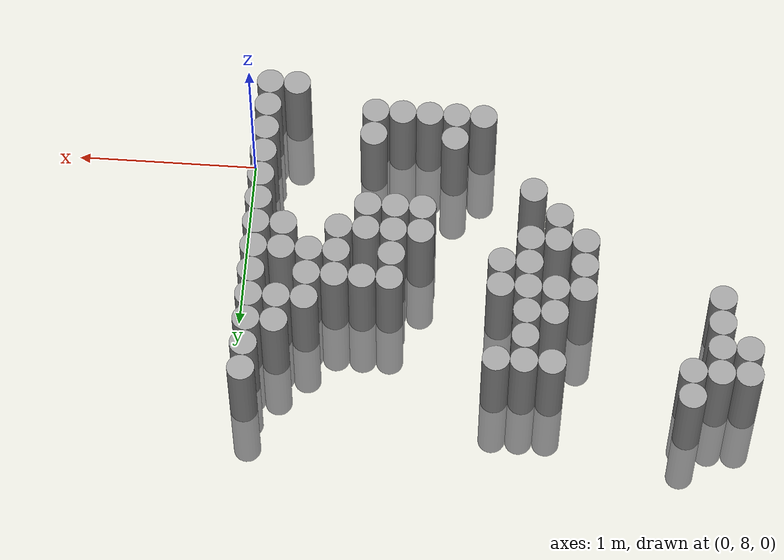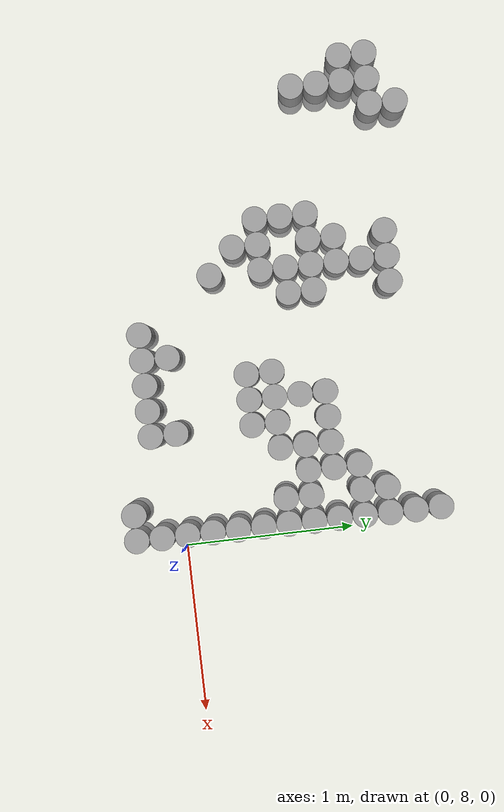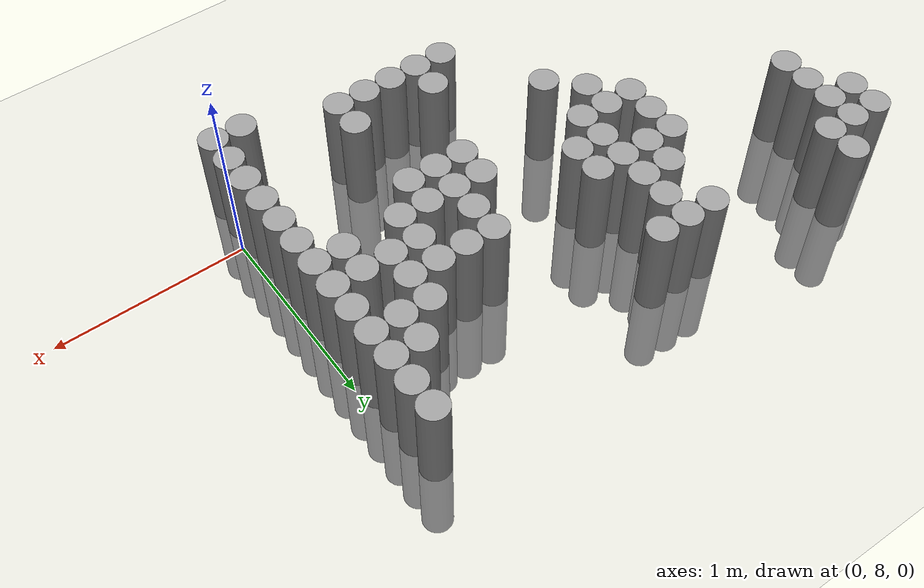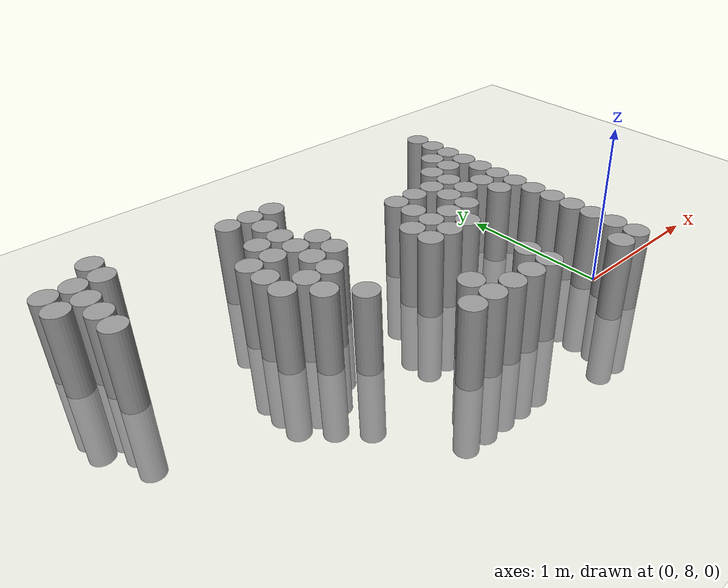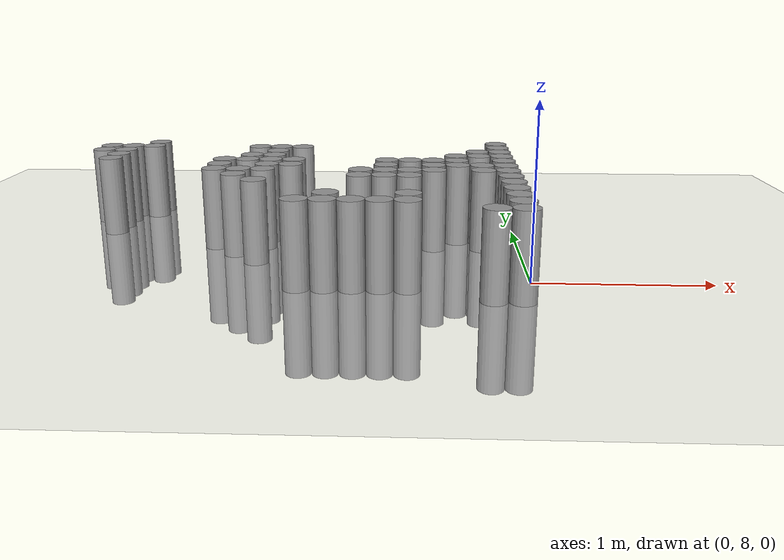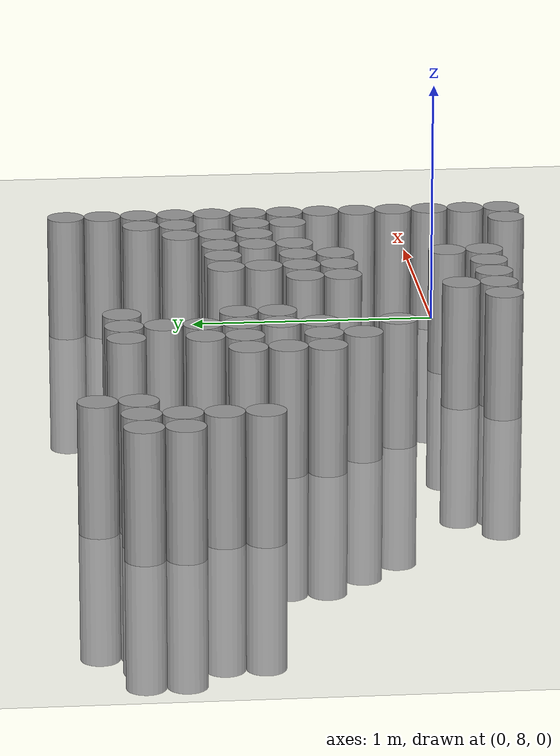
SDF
<sdf version="1.6">
 <world name="default">
  <model name="ground_plane">
   <static>1</static>
   <link name="link">
    <collision name="collision">
     <geometry><plane><normal>0 0 1</normal><size>100 100</size></plane></geometry>
     <surface><friction><ode><mu>100</mu><mu2>50</mu2></ode></friction></surface>
    </collision>
    <visual name="visual">
     <cast_shadows>0</cast_shadows>
     <geometry><plane><normal>0 0 1</normal><size>100 100</size></plane></geometry>
     <material>
      <script><uri>file://media/materials/scripts/gazebo.material</uri><name>Gazebo/Grey</name></script>
     </material>
    </visual>
   </link>
  </model>
  <model name="unit_cylinder_172">
   <pose>-2.775000 9.225000 0.000000 0.000000 0.000000 0.000000</pose>
   <link name="link">
    <inertial>
     <mass>1</mass>
     <inertia><ixx>0.145833</ixx><ixy>0</ixy><ixz>0</ixz><iyy>0.145833</iyy><iyz>0</iyz><izz>0.125</izz></inertia>
    </inertial>
    <collision name="collision">
     <geometry><cylinder><radius>0.075000</radius><length>1</length></cylinder></geometry>
    </collision>
    <visual name="visual">
     <geometry><cylinder><radius>0.075000</radius><length>1</length></cylinder></geometry>
     <material>
      <script><name>Gazebo/Grey</name><uri>file://media/materials/scripts/gazebo.material</uri></script>
     </material>
    </visual>
   </link>
  </model>
  <model name="unit_cylinder_173">
   <pose>-2.775000 9.375000 0.000000 0.000000 0.000000 0.000000</pose>
   <link name="link">
    <inertial>
     <mass>1</mass>
     <inertia><ixx>0.145833</ixx><ixy>0</ixy><ixz>0</ixz><iyy>0.145833</iyy><iyz>0</iyz><izz>0.125</izz></inertia>
    </inertial>
    <collision name="collision">
     <geometry><cylinder><radius>0.075000</radius><length>1</length></cylinder></geometry>
    </collision>
    <visual name="visual">
     <geometry><cylinder><radius>0.075000</radius><length>1</length></cylinder></geometry>
     <material>
      <script><name>Gazebo/Grey</name><uri>file://media/materials/scripts/gazebo.material</uri></script>
     </material>
    </visual>
   </link>
  </model>
  <model name="unit_cylinder_175">
   <pose>-2.625000 8.925000 0.000000 0.000000 0.000000 0.000000</pose>
   <link name="link">
    <inertial>
     <mass>1</mass>
     <inertia><ixx>0.145833</ixx><ixy>0</ixy><ixz>0</ixz><iyy>0.145833</iyy><iyz>0</iyz><izz>0.125</izz></inertia>
    </inertial>
    <collision name="collision">
     <geometry><cylinder><radius>0.075000</radius><length>1</length></cylinder></geometry>
    </collision>
    <visual name="visual">
     <geometry><cylinder><radius>0.075000</radius><length>1</length></cylinder></geometry>
     <material>
      <script><name>Gazebo/Grey</name><uri>file://media/materials/scripts/gazebo.material</uri></script>
     </material>
    </visual>
   </link>
  </model>
  <model name="unit_cylinder_176">
   <pose>-2.625000 9.075000 0.000000 0.000000 0.000000 0.000000</pose>
   <link name="link">
    <inertial>
     <mass>1</mass>
     <inertia><ixx>0.145833</ixx><ixy>0</ixy><ixz>0</ixz><iyy>0.145833</iyy><iyz>0</iyz><izz>0.125</izz></inertia>
    </inertial>
    <collision name="collision">
     <geometry><cylinder><radius>0.075000</radius><length>1</length></cylinder></geometry>
    </collision>
    <visual name="visual">
     <geometry><cylinder><radius>0.075000</radius><length>1</length></cylinder></geometry>
     <material>
      <script><name>Gazebo/Grey</name><uri>file://media/materials/scripts/gazebo.material</uri></script>
     </material>
    </visual>
   </link>
  </model>
  <model name="unit_cylinder_177">
   <pose>-2.625000 9.225000 0.000000 0.000000 0.000000 0.000000</pose>
   <link name="link">
    <inertial>
     <mass>1</mass>
     <inertia><ixx>0.145833</ixx><ixy>0</ixy><ixz>0</ixz><iyy>0.145833</iyy><iyz>0</iyz><izz>0.125</izz></inertia>
    </inertial>
    <collision name="collision">
     <geometry><cylinder><radius>0.075000</radius><length>1</length></cylinder></geometry>
    </collision>
    <visual name="visual">
     <geometry><cylinder><radius>0.075000</radius><length>1</length></cylinder></geometry>
     <material>
      <script><name>Gazebo/Grey</name><uri>file://media/materials/scripts/gazebo.material</uri></script>
     </material>
    </visual>
   </link>
  </model>
  <model name="unit_cylinder_178">
   <pose>-2.625000 9.375000 0.000000 0.000000 0.000000 0.000000</pose>
   <link name="link">
    <inertial>
     <mass>1</mass>
     <inertia><ixx>0.145833</ixx><ixy>0</ixy><ixz>0</ixz><iyy>0.145833</iyy><iyz>0</iyz><izz>0.125</izz></inertia>
    </inertial>
    <collision name="collision">
     <geometry><cylinder><radius>0.075000</radius><length>1</length></cylinder></geometry>
    </collision>
    <visual name="visual">
     <geometry><cylinder><radius>0.075000</radius><length>1</length></cylinder></geometry>
     <material>
      <script><name>Gazebo/Grey</name><uri>file://media/materials/scripts/gazebo.material</uri></script>
     </material>
    </visual>
   </link>
  </model>
  <model name="unit_cylinder_181">
   <pose>-2.475000 9.375000 0.000000 0.000000 0.000000 0.000000</pose>
   <link name="link">
    <inertial>
     <mass>1</mass>
     <inertia><ixx>0.145833</ixx><ixy>0</ixy><ixz>0</ixz><iyy>0.145833</iyy><iyz>0</iyz><izz>0.125</izz></inertia>
    </inertial>
    <collision name="collision">
     <geometry><cylinder><radius>0.075000</radius><length>1</length></cylinder></geometry>
    </collision>
    <visual name="visual">
     <geometry><cylinder><radius>0.075000</radius><length>1</length></cylinder></geometry>
     <material>
      <script><name>Gazebo/Grey</name><uri>file://media/materials/scripts/gazebo.material</uri></script>
     </material>
    </visual>
   </link>
  </model>
  <model name="unit_cylinder_182">
   <pose>-2.475000 9.525000 0.000000 0.000000 0.000000 0.000000</pose>
   <link name="link">
    <inertial>
     <mass>1</mass>
     <inertia><ixx>0.145833</ixx><ixy>0</ixy><ixz>0</ixz><iyy>0.145833</iyy><iyz>0</iyz><izz>0.125</izz></inertia>
    </inertial>
    <collision name="collision">
     <geometry><cylinder><radius>0.075000</radius><length>1</length></cylinder></geometry>
    </collision>
    <visual name="visual">
     <geometry><cylinder><radius>0.075000</radius><length>1</length></cylinder></geometry>
     <material>
      <script><name>Gazebo/Grey</name><uri>file://media/materials/scripts/gazebo.material</uri></script>
     </material>
    </visual>
   </link>
  </model>
  <model name="unit_cylinder_190">
   <pose>-1.875000 8.625000 0.000000 0.000000 0.000000 0.000000</pose>
   <link name="link">
    <inertial>
     <mass>1</mass>
     <inertia><ixx>0.145833</ixx><ixy>0</ixy><ixz>0</ixz><iyy>0.145833</iyy><iyz>0</iyz><izz>0.125</izz></inertia>
    </inertial>
    <collision name="collision">
     <geometry><cylinder><radius>0.075000</radius><length>1</length></cylinder></geometry>
    </collision>
    <visual name="visual">
     <geometry><cylinder><radius>0.075000</radius><length>1</length></cylinder></geometry>
     <material>
      <script><name>Gazebo/Grey</name><uri>file://media/materials/scripts/gazebo.material</uri></script>
     </material>
    </visual>
   </link>
  </model>
  <model name="unit_cylinder_191">
   <pose>-1.875000 8.775000 0.000000 0.000000 0.000000 0.000000</pose>
   <link name="link">
    <inertial>
     <mass>1</mass>
     <inertia><ixx>0.145833</ixx><ixy>0</ixy><ixz>0</ixz><iyy>0.145833</iyy><iyz>0</iyz><izz>0.125</izz></inertia>
    </inertial>
    <collision name="collision">
     <geometry><cylinder><radius>0.075000</radius><length>1</length></cylinder></geometry>
    </collision>
    <visual name="visual">
     <geometry><cylinder><radius>0.075000</radius><length>1</length></cylinder></geometry>
     <material>
      <script><name>Gazebo/Grey</name><uri>file://media/materials/scripts/gazebo.material</uri></script>
     </material>
    </visual>
   </link>
  </model>
  <model name="unit_cylinder_192">
   <pose>-1.875000 8.925000 0.000000 0.000000 0.000000 0.000000</pose>
   <link name="link">
    <inertial>
     <mass>1</mass>
     <inertia><ixx>0.145833</ixx><ixy>0</ixy><ixz>0</ixz><iyy>0.145833</iyy><iyz>0</iyz><izz>0.125</izz></inertia>
    </inertial>
    <collision name="collision">
     <geometry><cylinder><radius>0.075000</radius><length>1</length></cylinder></geometry>
    </collision>
    <visual name="visual">
     <geometry><cylinder><radius>0.075000</radius><length>1</length></cylinder></geometry>
     <material>
      <script><name>Gazebo/Grey</name><uri>file://media/materials/scripts/gazebo.material</uri></script>
     </material>
    </visual>
   </link>
  </model>
  <model name="unit_cylinder_197">
   <pose>-1.725000 8.475000 0.000000 0.000000 0.000000 0.000000</pose>
   <link name="link">
    <inertial>
     <mass>1</mass>
     <inertia><ixx>0.145833</ixx><ixy>0</ixy><ixz>0</ixz><iyy>0.145833</iyy><iyz>0</iyz><izz>0.125</izz></inertia>
    </inertial>
    <collision name="collision">
     <geometry><cylinder><radius>0.075000</radius><length>1</length></cylinder></geometry>
    </collision>
    <visual name="visual">
     <geometry><cylinder><radius>0.075000</radius><length>1</length></cylinder></geometry>
     <material>
      <script><name>Gazebo/Grey</name><uri>file://media/materials/scripts/gazebo.material</uri></script>
     </material>
    </visual>
   </link>
  </model>
  <model name="unit_cylinder_198">
   <pose>-1.725000 8.625000 0.000000 0.000000 0.000000 0.000000</pose>
   <link name="link">
    <inertial>
     <mass>1</mass>
     <inertia><ixx>0.145833</ixx><ixy>0</ixy><ixz>0</ixz><iyy>0.145833</iyy><iyz>0</iyz><izz>0.125</izz></inertia>
    </inertial>
    <collision name="collision">
     <geometry><cylinder><radius>0.075000</radius><length>1</length></cylinder></geometry>
    </collision>
    <visual name="visual">
     <geometry><cylinder><radius>0.075000</radius><length>1</length></cylinder></geometry>
     <material>
      <script><name>Gazebo/Grey</name><uri>file://media/materials/scripts/gazebo.material</uri></script>
     </material>
    </visual>
   </link>
  </model>
  <model name="unit_cylinder_199">
   <pose>-1.725000 8.925000 0.000000 0.000000 0.000000 0.000000</pose>
   <link name="link">
    <inertial>
     <mass>1</mass>
     <inertia><ixx>0.145833</ixx><ixy>0</ixy><ixz>0</ixz><iyy>0.145833</iyy><iyz>0</iyz><izz>0.125</izz></inertia>
    </inertial>
    <collision name="collision">
     <geometry><cylinder><radius>0.075000</radius><length>1</length></cylinder></geometry>
    </collision>
    <visual name="visual">
     <geometry><cylinder><radius>0.075000</radius><length>1</length></cylinder></geometry>
     <material>
      <script><name>Gazebo/Grey</name><uri>file://media/materials/scripts/gazebo.material</uri></script>
     </material>
    </visual>
   </link>
  </model>
  <model name="unit_cylinder_200">
   <pose>-1.725000 9.075000 0.000000 0.000000 0.000000 0.000000</pose>
   <link name="link">
    <inertial>
     <mass>1</mass>
     <inertia><ixx>0.145833</ixx><ixy>0</ixy><ixz>0</ixz><iyy>0.145833</iyy><iyz>0</iyz><izz>0.125</izz></inertia>
    </inertial>
    <collision name="collision">
     <geometry><cylinder><radius>0.075000</radius><length>1</length></cylinder></geometry>
    </collision>
    <visual name="visual">
     <geometry><cylinder><radius>0.075000</radius><length>1</length></cylinder></geometry>
     <material>
      <script><name>Gazebo/Grey</name><uri>file://media/materials/scripts/gazebo.material</uri></script>
     </material>
    </visual>
   </link>
  </model>
  <model name="unit_cylinder_201">
   <pose>-1.725000 9.375000 0.000000 0.000000 0.000000 0.000000</pose>
   <link name="link">
    <inertial>
     <mass>1</mass>
     <inertia><ixx>0.145833</ixx><ixy>0</ixy><ixz>0</ixz><iyy>0.145833</iyy><iyz>0</iyz><izz>0.125</izz></inertia>
    </inertial>
    <collision name="collision">
     <geometry><cylinder><radius>0.075000</radius><length>1</length></cylinder></geometry>
    </collision>
    <visual name="visual">
     <geometry><cylinder><radius>0.075000</radius><length>1</length></cylinder></geometry>
     <material>
      <script><name>Gazebo/Grey</name><uri>file://media/materials/scripts/gazebo.material</uri></script>
     </material>
    </visual>
   </link>
  </model>
  <model name="unit_cylinder_206">
   <pose>-1.575000 8.325000 0.000000 0.000000 0.000000 0.000000</pose>
   <link name="link">
    <inertial>
     <mass>1</mass>
     <inertia><ixx>0.145833</ixx><ixy>0</ixy><ixz>0</ixz><iyy>0.145833</iyy><iyz>0</iyz><izz>0.125</izz></inertia>
    </inertial>
    <collision name="collision">
     <geometry><cylinder><radius>0.075000</radius><length>1</length></cylinder></geometry>
    </collision>
    <visual name="visual">
     <geometry><cylinder><radius>0.075000</radius><length>1</length></cylinder></geometry>
     <material>
      <script><name>Gazebo/Grey</name><uri>file://media/materials/scripts/gazebo.material</uri></script>
     </material>
    </visual>
   </link>
  </model>
  <model name="unit_cylinder_207">
   <pose>-1.575000 8.625000 0.000000 0.000000 0.000000 0.000000</pose>
   <link name="link">
    <inertial>
     <mass>1</mass>
     <inertia><ixx>0.145833</ixx><ixy>0</ixy><ixz>0</ixz><iyy>0.145833</iyy><iyz>0</iyz><izz>0.125</izz></inertia>
    </inertial>
    <collision name="collision">
     <geometry><cylinder><radius>0.075000</radius><length>1</length></cylinder></geometry>
    </collision>
    <visual name="visual">
     <geometry><cylinder><radius>0.075000</radius><length>1</length></cylinder></geometry>
     <material>
      <script><name>Gazebo/Grey</name><uri>file://media/materials/scripts/gazebo.material</uri></script>
     </material>
    </visual>
   </link>
  </model>
  <model name="unit_cylinder_208">
   <pose>-1.575000 8.775000 0.000000 0.000000 0.000000 0.000000</pose>
   <link name="link">
    <inertial>
     <mass>1</mass>
     <inertia><ixx>0.145833</ixx><ixy>0</ixy><ixz>0</ixz><iyy>0.145833</iyy><iyz>0</iyz><izz>0.125</izz></inertia>
    </inertial>
    <collision name="collision">
     <geometry><cylinder><radius>0.075000</radius><length>1</length></cylinder></geometry>
    </collision>
    <visual name="visual">
     <geometry><cylinder><radius>0.075000</radius><length>1</length></cylinder></geometry>
     <material>
      <script><name>Gazebo/Grey</name><uri>file://media/materials/scripts/gazebo.material</uri></script>
     </material>
    </visual>
   </link>
  </model>
  <model name="unit_cylinder_209">
   <pose>-1.575000 8.925000 0.000000 0.000000 0.000000 0.000000</pose>
   <link name="link">
    <inertial>
     <mass>1</mass>
     <inertia><ixx>0.145833</ixx><ixy>0</ixy><ixz>0</ixz><iyy>0.145833</iyy><iyz>0</iyz><izz>0.125</izz></inertia>
    </inertial>
    <collision name="collision">
     <geometry><cylinder><radius>0.075000</radius><length>1</length></cylinder></geometry>
    </collision>
    <visual name="visual">
     <geometry><cylinder><radius>0.075000</radius><length>1</length></cylinder></geometry>
     <material>
      <script><name>Gazebo/Grey</name><uri>file://media/materials/scripts/gazebo.material</uri></script>
     </material>
    </visual>
   </link>
  </model>
  <model name="unit_cylinder_210">
   <pose>-1.575000 9.075000 0.000000 0.000000 0.000000 0.000000</pose>
   <link name="link">
    <inertial>
     <mass>1</mass>
     <inertia><ixx>0.145833</ixx><ixy>0</ixy><ixz>0</ixz><iyy>0.145833</iyy><iyz>0</iyz><izz>0.125</izz></inertia>
    </inertial>
    <collision name="collision">
     <geometry><cylinder><radius>0.075000</radius><length>1</length></cylinder></geometry>
    </collision>
    <visual name="visual">
     <geometry><cylinder><radius>0.075000</radius><length>1</length></cylinder></geometry>
     <material>
      <script><name>Gazebo/Grey</name><uri>file://media/materials/scripts/gazebo.material</uri></script>
     </material>
    </visual>
   </link>
  </model>
  <model name="unit_cylinder_211">
   <pose>-1.575000 9.225000 0.000000 0.000000 0.000000 0.000000</pose>
   <link name="link">
    <inertial>
     <mass>1</mass>
     <inertia><ixx>0.145833</ixx><ixy>0</ixy><ixz>0</ixz><iyy>0.145833</iyy><iyz>0</iyz><izz>0.125</izz></inertia>
    </inertial>
    <collision name="collision">
     <geometry><cylinder><radius>0.075000</radius><length>1</length></cylinder></geometry>
    </collision>
    <visual name="visual">
     <geometry><cylinder><radius>0.075000</radius><length>1</length></cylinder></geometry>
     <material>
      <script><name>Gazebo/Grey</name><uri>file://media/materials/scripts/gazebo.material</uri></script>
     </material>
    </visual>
   </link>
  </model>
  <model name="unit_cylinder_212">
   <pose>-1.575000 9.375000 0.000000 0.000000 0.000000 0.000000</pose>
   <link name="link">
    <inertial>
     <mass>1</mass>
     <inertia><ixx>0.145833</ixx><ixy>0</ixy><ixz>0</ixz><iyy>0.145833</iyy><iyz>0</iyz><izz>0.125</izz></inertia>
    </inertial>
    <collision name="collision">
     <geometry><cylinder><radius>0.075000</radius><length>1</length></cylinder></geometry>
    </collision>
    <visual name="visual">
     <geometry><cylinder><radius>0.075000</radius><length>1</length></cylinder></geometry>
     <material>
      <script><name>Gazebo/Grey</name><uri>file://media/materials/scripts/gazebo.material</uri></script>
     </material>
    </visual>
   </link>
  </model>
  <model name="unit_cylinder_219">
   <pose>-1.425000 8.775000 0.000000 0.000000 0.000000 0.000000</pose>
   <link name="link">
    <inertial>
     <mass>1</mass>
     <inertia><ixx>0.145833</ixx><ixy>0</ixy><ixz>0</ixz><iyy>0.145833</iyy><iyz>0</iyz><izz>0.125</izz></inertia>
    </inertial>
    <collision name="collision">
     <geometry><cylinder><radius>0.075000</radius><length>1</length></cylinder></geometry>
    </collision>
    <visual name="visual">
     <geometry><cylinder><radius>0.075000</radius><length>1</length></cylinder></geometry>
     <material>
      <script><name>Gazebo/Grey</name><uri>file://media/materials/scripts/gazebo.material</uri></script>
     </material>
    </visual>
   </link>
  </model>
  <model name="unit_cylinder_220">
   <pose>-1.425000 8.925000 0.000000 0.000000 0.000000 0.000000</pose>
   <link name="link">
    <inertial>
     <mass>1</mass>
     <inertia><ixx>0.145833</ixx><ixy>0</ixy><ixz>0</ixz><iyy>0.145833</iyy><iyz>0</iyz><izz>0.125</izz></inertia>
    </inertial>
    <collision name="collision">
     <geometry><cylinder><radius>0.075000</radius><length>1</length></cylinder></geometry>
    </collision>
    <visual name="visual">
     <geometry><cylinder><radius>0.075000</radius><length>1</length></cylinder></geometry>
     <material>
      <script><name>Gazebo/Grey</name><uri>file://media/materials/scripts/gazebo.material</uri></script>
     </material>
    </visual>
   </link>
  </model>
  <model name="unit_cylinder_221">
   <pose>-1.425000 9.375000 0.000000 0.000000 0.000000 0.000000</pose>
   <link name="link">
    <inertial>
     <mass>1</mass>
     <inertia><ixx>0.145833</ixx><ixy>0</ixy><ixz>0</ixz><iyy>0.145833</iyy><iyz>0</iyz><izz>0.125</izz></inertia>
    </inertial>
    <collision name="collision">
     <geometry><cylinder><radius>0.075000</radius><length>1</length></cylinder></geometry>
    </collision>
    <visual name="visual">
     <geometry><cylinder><radius>0.075000</radius><length>1</length></cylinder></geometry>
     <material>
      <script><name>Gazebo/Grey</name><uri>file://media/materials/scripts/gazebo.material</uri></script>
     </material>
    </visual>
   </link>
  </model>
  <model name="unit_cylinder_228">
   <pose>-1.275000 7.875000 0.000000 0.000000 0.000000 0.000000</pose>
   <link name="link">
    <inertial>
     <mass>1</mass>
     <inertia><ixx>0.145833</ixx><ixy>0</ixy><ixz>0</ixz><iyy>0.145833</iyy><iyz>0</iyz><izz>0.125</izz></inertia>
    </inertial>
    <collision name="collision">
     <geometry><cylinder><radius>0.075000</radius><length>1</length></cylinder></geometry>
    </collision>
    <visual name="visual">
     <geometry><cylinder><radius>0.075000</radius><length>1</length></cylinder></geometry>
     <material>
      <script><name>Gazebo/Grey</name><uri>file://media/materials/scripts/gazebo.material</uri></script>
     </material>
    </visual>
   </link>
  </model>
  <model name="unit_cylinder_235">
   <pose>-1.125000 7.875000 0.000000 0.000000 0.000000 0.000000</pose>
   <link name="link">
    <inertial>
     <mass>1</mass>
     <inertia><ixx>0.145833</ixx><ixy>0</ixy><ixz>0</ixz><iyy>0.145833</iyy><iyz>0</iyz><izz>0.125</izz></inertia>
    </inertial>
    <collision name="collision">
     <geometry><cylinder><radius>0.075000</radius><length>1</length></cylinder></geometry>
    </collision>
    <visual name="visual">
     <geometry><cylinder><radius>0.075000</radius><length>1</length></cylinder></geometry>
     <material>
      <script><name>Gazebo/Grey</name><uri>file://media/materials/scripts/gazebo.material</uri></script>
     </material>
    </visual>
   </link>
  </model>
  <model name="unit_cylinder_236">
   <pose>-1.125000 8.025000 0.000000 0.000000 0.000000 0.000000</pose>
   <link name="link">
    <inertial>
     <mass>1</mass>
     <inertia><ixx>0.145833</ixx><ixy>0</ixy><ixz>0</ixz><iyy>0.145833</iyy><iyz>0</iyz><izz>0.125</izz></inertia>
    </inertial>
    <collision name="collision">
     <geometry><cylinder><radius>0.075000</radius><length>1</length></cylinder></geometry>
    </collision>
    <visual name="visual">
     <geometry><cylinder><radius>0.075000</radius><length>1</length></cylinder></geometry>
     <material>
      <script><name>Gazebo/Grey</name><uri>file://media/materials/scripts/gazebo.material</uri></script>
     </material>
    </visual>
   </link>
  </model>
  <model name="unit_cylinder_244">
   <pose>-0.975000 7.875000 0.000000 0.000000 0.000000 0.000000</pose>
   <link name="link">
    <inertial>
     <mass>1</mass>
     <inertia><ixx>0.145833</ixx><ixy>0</ixy><ixz>0</ixz><iyy>0.145833</iyy><iyz>0</iyz><izz>0.125</izz></inertia>
    </inertial>
    <collision name="collision">
     <geometry><cylinder><radius>0.075000</radius><length>1</length></cylinder></geometry>
    </collision>
    <visual name="visual">
     <geometry><cylinder><radius>0.075000</radius><length>1</length></cylinder></geometry>
     <material>
      <script><name>Gazebo/Grey</name><uri>file://media/materials/scripts/gazebo.material</uri></script>
     </material>
    </visual>
   </link>
  </model>
  <model name="unit_cylinder_245">
   <pose>-0.975000 8.475000 0.000000 0.000000 0.000000 0.000000</pose>
   <link name="link">
    <inertial>
     <mass>1</mass>
     <inertia><ixx>0.145833</ixx><ixy>0</ixy><ixz>0</ixz><iyy>0.145833</iyy><iyz>0</iyz><izz>0.125</izz></inertia>
    </inertial>
    <collision name="collision">
     <geometry><cylinder><radius>0.075000</radius><length>1</length></cylinder></geometry>
    </collision>
    <visual name="visual">
     <geometry><cylinder><radius>0.075000</radius><length>1</length></cylinder></geometry>
     <material>
      <script><name>Gazebo/Grey</name><uri>file://media/materials/scripts/gazebo.material</uri></script>
     </material>
    </visual>
   </link>
  </model>
  <model name="unit_cylinder_246">
   <pose>-0.975000 8.625000 0.000000 0.000000 0.000000 0.000000</pose>
   <link name="link">
    <inertial>
     <mass>1</mass>
     <inertia><ixx>0.145833</ixx><ixy>0</ixy><ixz>0</ixz><iyy>0.145833</iyy><iyz>0</iyz><izz>0.125</izz></inertia>
    </inertial>
    <collision name="collision">
     <geometry><cylinder><radius>0.075000</radius><length>1</length></cylinder></geometry>
    </collision>
    <visual name="visual">
     <geometry><cylinder><radius>0.075000</radius><length>1</length></cylinder></geometry>
     <material>
      <script><name>Gazebo/Grey</name><uri>file://media/materials/scripts/gazebo.material</uri></script>
     </material>
    </visual>
   </link>
  </model>
  <model name="unit_cylinder_253">
   <pose>-0.825000 7.875000 0.000000 0.000000 0.000000 0.000000</pose>
   <link name="link">
    <inertial>
     <mass>1</mass>
     <inertia><ixx>0.145833</ixx><ixy>0</ixy><ixz>0</ixz><iyy>0.145833</iyy><iyz>0</iyz><izz>0.125</izz></inertia>
    </inertial>
    <collision name="collision">
     <geometry><cylinder><radius>0.075000</radius><length>1</length></cylinder></geometry>
    </collision>
    <visual name="visual">
     <geometry><cylinder><radius>0.075000</radius><length>1</length></cylinder></geometry>
     <material>
      <script><name>Gazebo/Grey</name><uri>file://media/materials/scripts/gazebo.material</uri></script>
     </material>
    </visual>
   </link>
  </model>
  <model name="unit_cylinder_254">
   <pose>-0.825000 8.475000 0.000000 0.000000 0.000000 0.000000</pose>
   <link name="link">
    <inertial>
     <mass>1</mass>
     <inertia><ixx>0.145833</ixx><ixy>0</ixy><ixz>0</ixz><iyy>0.145833</iyy><iyz>0</iyz><izz>0.125</izz></inertia>
    </inertial>
    <collision name="collision">
     <geometry><cylinder><radius>0.075000</radius><length>1</length></cylinder></geometry>
    </collision>
    <visual name="visual">
     <geometry><cylinder><radius>0.075000</radius><length>1</length></cylinder></geometry>
     <material>
      <script><name>Gazebo/Grey</name><uri>file://media/materials/scripts/gazebo.material</uri></script>
     </material>
    </visual>
   </link>
  </model>
  <model name="unit_cylinder_255">
   <pose>-0.825000 8.625000 0.000000 0.000000 0.000000 0.000000</pose>
   <link name="link">
    <inertial>
     <mass>1</mass>
     <inertia><ixx>0.145833</ixx><ixy>0</ixy><ixz>0</ixz><iyy>0.145833</iyy><iyz>0</iyz><izz>0.125</izz></inertia>
    </inertial>
    <collision name="collision">
     <geometry><cylinder><radius>0.075000</radius><length>1</length></cylinder></geometry>
    </collision>
    <visual name="visual">
     <geometry><cylinder><radius>0.075000</radius><length>1</length></cylinder></geometry>
     <material>
      <script><name>Gazebo/Grey</name><uri>file://media/materials/scripts/gazebo.material</uri></script>
     </material>
    </visual>
   </link>
  </model>
  <model name="unit_cylinder_256">
   <pose>-0.825000 8.775000 0.000000 0.000000 0.000000 0.000000</pose>
   <link name="link">
    <inertial>
     <mass>1</mass>
     <inertia><ixx>0.145833</ixx><ixy>0</ixy><ixz>0</ixz><iyy>0.145833</iyy><iyz>0</iyz><izz>0.125</izz></inertia>
    </inertial>
    <collision name="collision">
     <geometry><cylinder><radius>0.075000</radius><length>1</length></cylinder></geometry>
    </collision>
    <visual name="visual">
     <geometry><cylinder><radius>0.075000</radius><length>1</length></cylinder></geometry>
     <material>
      <script><name>Gazebo/Grey</name><uri>file://media/materials/scripts/gazebo.material</uri></script>
     </material>
    </visual>
   </link>
  </model>
  <model name="unit_cylinder_257">
   <pose>-0.825000 8.925000 0.000000 0.000000 0.000000 0.000000</pose>
   <link name="link">
    <inertial>
     <mass>1</mass>
     <inertia><ixx>0.145833</ixx><ixy>0</ixy><ixz>0</ixz><iyy>0.145833</iyy><iyz>0</iyz><izz>0.125</izz></inertia>
    </inertial>
    <collision name="collision">
     <geometry><cylinder><radius>0.075000</radius><length>1</length></cylinder></geometry>
    </collision>
    <visual name="visual">
     <geometry><cylinder><radius>0.075000</radius><length>1</length></cylinder></geometry>
     <material>
      <script><name>Gazebo/Grey</name><uri>file://media/materials/scripts/gazebo.material</uri></script>
     </material>
    </visual>
   </link>
  </model>
  <model name="unit_cylinder_265">
   <pose>-0.675000 7.875000 0.000000 0.000000 0.000000 0.000000</pose>
   <link name="link">
    <inertial>
     <mass>1</mass>
     <inertia><ixx>0.145833</ixx><ixy>0</ixy><ixz>0</ixz><iyy>0.145833</iyy><iyz>0</iyz><izz>0.125</izz></inertia>
    </inertial>
    <collision name="collision">
     <geometry><cylinder><radius>0.075000</radius><length>1</length></cylinder></geometry>
    </collision>
    <visual name="visual">
     <geometry><cylinder><radius>0.075000</radius><length>1</length></cylinder></geometry>
     <material>
      <script><name>Gazebo/Grey</name><uri>file://media/materials/scripts/gazebo.material</uri></script>
     </material>
    </visual>
   </link>
  </model>
  <model name="unit_cylinder_266">
   <pose>-0.675000 8.025000 0.000000 0.000000 0.000000 0.000000</pose>
   <link name="link">
    <inertial>
     <mass>1</mass>
     <inertia><ixx>0.145833</ixx><ixy>0</ixy><ixz>0</ixz><iyy>0.145833</iyy><iyz>0</iyz><izz>0.125</izz></inertia>
    </inertial>
    <collision name="collision">
     <geometry><cylinder><radius>0.075000</radius><length>1</length></cylinder></geometry>
    </collision>
    <visual name="visual">
     <geometry><cylinder><radius>0.075000</radius><length>1</length></cylinder></geometry>
     <material>
      <script><name>Gazebo/Grey</name><uri>file://media/materials/scripts/gazebo.material</uri></script>
     </material>
    </visual>
   </link>
  </model>
  <model name="unit_cylinder_267">
   <pose>-0.675000 8.475000 0.000000 0.000000 0.000000 0.000000</pose>
   <link name="link">
    <inertial>
     <mass>1</mass>
     <inertia><ixx>0.145833</ixx><ixy>0</ixy><ixz>0</ixz><iyy>0.145833</iyy><iyz>0</iyz><izz>0.125</izz></inertia>
    </inertial>
    <collision name="collision">
     <geometry><cylinder><radius>0.075000</radius><length>1</length></cylinder></geometry>
    </collision>
    <visual name="visual">
     <geometry><cylinder><radius>0.075000</radius><length>1</length></cylinder></geometry>
     <material>
      <script><name>Gazebo/Grey</name><uri>file://media/materials/scripts/gazebo.material</uri></script>
     </material>
    </visual>
   </link>
  </model>
  <model name="unit_cylinder_268">
   <pose>-0.675000 8.625000 0.000000 0.000000 0.000000 0.000000</pose>
   <link name="link">
    <inertial>
     <mass>1</mass>
     <inertia><ixx>0.145833</ixx><ixy>0</ixy><ixz>0</ixz><iyy>0.145833</iyy><iyz>0</iyz><izz>0.125</izz></inertia>
    </inertial>
    <collision name="collision">
     <geometry><cylinder><radius>0.075000</radius><length>1</length></cylinder></geometry>
    </collision>
    <visual name="visual">
     <geometry><cylinder><radius>0.075000</radius><length>1</length></cylinder></geometry>
     <material>
      <script><name>Gazebo/Grey</name><uri>file://media/materials/scripts/gazebo.material</uri></script>
     </material>
    </visual>
   </link>
  </model>
  <model name="unit_cylinder_269">
   <pose>-0.675000 8.925000 0.000000 0.000000 0.000000 0.000000</pose>
   <link name="link">
    <inertial>
     <mass>1</mass>
     <inertia><ixx>0.145833</ixx><ixy>0</ixy><ixz>0</ixz><iyy>0.145833</iyy><iyz>0</iyz><izz>0.125</izz></inertia>
    </inertial>
    <collision name="collision">
     <geometry><cylinder><radius>0.075000</radius><length>1</length></cylinder></geometry>
    </collision>
    <visual name="visual">
     <geometry><cylinder><radius>0.075000</radius><length>1</length></cylinder></geometry>
     <material>
      <script><name>Gazebo/Grey</name><uri>file://media/materials/scripts/gazebo.material</uri></script>
     </material>
    </visual>
   </link>
  </model>
  <model name="unit_cylinder_274">
   <pose>-0.525000 8.625000 0.000000 0.000000 0.000000 0.000000</pose>
   <link name="link">
    <inertial>
     <mass>1</mass>
     <inertia><ixx>0.145833</ixx><ixy>0</ixy><ixz>0</ixz><iyy>0.145833</iyy><iyz>0</iyz><izz>0.125</izz></inertia>
    </inertial>
    <collision name="collision">
     <geometry><cylinder><radius>0.075000</radius><length>1</length></cylinder></geometry>
    </collision>
    <visual name="visual">
     <geometry><cylinder><radius>0.075000</radius><length>1</length></cylinder></geometry>
     <material>
      <script><name>Gazebo/Grey</name><uri>file://media/materials/scripts/gazebo.material</uri></script>
     </material>
    </visual>
   </link>
  </model>
  <model name="unit_cylinder_275">
   <pose>-0.525000 8.775000 0.000000 0.000000 0.000000 0.000000</pose>
   <link name="link">
    <inertial>
     <mass>1</mass>
     <inertia><ixx>0.145833</ixx><ixy>0</ixy><ixz>0</ixz><iyy>0.145833</iyy><iyz>0</iyz><izz>0.125</izz></inertia>
    </inertial>
    <collision name="collision">
     <geometry><cylinder><radius>0.075000</radius><length>1</length></cylinder></geometry>
    </collision>
    <visual name="visual">
     <geometry><cylinder><radius>0.075000</radius><length>1</length></cylinder></geometry>
     <material>
      <script><name>Gazebo/Grey</name><uri>file://media/materials/scripts/gazebo.material</uri></script>
     </material>
    </visual>
   </link>
  </model>
  <model name="unit_cylinder_276">
   <pose>-0.525000 8.925000 0.000000 0.000000 0.000000 0.000000</pose>
   <link name="link">
    <inertial>
     <mass>1</mass>
     <inertia><ixx>0.145833</ixx><ixy>0</ixy><ixz>0</ixz><iyy>0.145833</iyy><iyz>0</iyz><izz>0.125</izz></inertia>
    </inertial>
    <collision name="collision">
     <geometry><cylinder><radius>0.075000</radius><length>1</length></cylinder></geometry>
    </collision>
    <visual name="visual">
     <geometry><cylinder><radius>0.075000</radius><length>1</length></cylinder></geometry>
     <material>
      <script><name>Gazebo/Grey</name><uri>file://media/materials/scripts/gazebo.material</uri></script>
     </material>
    </visual>
   </link>
  </model>
  <model name="unit_cylinder_282">
   <pose>-0.375000 8.775000 0.000000 0.000000 0.000000 0.000000</pose>
   <link name="link">
    <inertial>
     <mass>1</mass>
     <inertia><ixx>0.145833</ixx><ixy>0</ixy><ixz>0</ixz><iyy>0.145833</iyy><iyz>0</iyz><izz>0.125</izz></inertia>
    </inertial>
    <collision name="collision">
     <geometry><cylinder><radius>0.075000</radius><length>1</length></cylinder></geometry>
    </collision>
    <visual name="visual">
     <geometry><cylinder><radius>0.075000</radius><length>1</length></cylinder></geometry>
     <material>
      <script><name>Gazebo/Grey</name><uri>file://media/materials/scripts/gazebo.material</uri></script>
     </material>
    </visual>
   </link>
  </model>
  <model name="unit_cylinder_283">
   <pose>-0.375000 8.925000 0.000000 0.000000 0.000000 0.000000</pose>
   <link name="link">
    <inertial>
     <mass>1</mass>
     <inertia><ixx>0.145833</ixx><ixy>0</ixy><ixz>0</ixz><iyy>0.145833</iyy><iyz>0</iyz><izz>0.125</izz></inertia>
    </inertial>
    <collision name="collision">
     <geometry><cylinder><radius>0.075000</radius><length>1</length></cylinder></geometry>
    </collision>
    <visual name="visual">
     <geometry><cylinder><radius>0.075000</radius><length>1</length></cylinder></geometry>
     <material>
      <script><name>Gazebo/Grey</name><uri>file://media/materials/scripts/gazebo.material</uri></script>
     </material>
    </visual>
   </link>
  </model>
  <model name="unit_cylinder_284">
   <pose>-0.375000 9.075000 0.000000 0.000000 0.000000 0.000000</pose>
   <link name="link">
    <inertial>
     <mass>1</mass>
     <inertia><ixx>0.145833</ixx><ixy>0</ixy><ixz>0</ixz><iyy>0.145833</iyy><iyz>0</iyz><izz>0.125</izz></inertia>
    </inertial>
    <collision name="collision">
     <geometry><cylinder><radius>0.075000</radius><length>1</length></cylinder></geometry>
    </collision>
    <visual name="visual">
     <geometry><cylinder><radius>0.075000</radius><length>1</length></cylinder></geometry>
     <material>
      <script><name>Gazebo/Grey</name><uri>file://media/materials/scripts/gazebo.material</uri></script>
     </material>
    </visual>
   </link>
  </model>
  <model name="unit_cylinder_295">
   <pose>-0.225000 7.725000 0.000000 0.000000 0.000000 0.000000</pose>
   <link name="link">
    <inertial>
     <mass>1</mass>
     <inertia><ixx>0.145833</ixx><ixy>0</ixy><ixz>0</ixz><iyy>0.145833</iyy><iyz>0</iyz><izz>0.125</izz></inertia>
    </inertial>
    <collision name="collision">
     <geometry><cylinder><radius>0.075000</radius><length>1</length></cylinder></geometry>
    </collision>
    <visual name="visual">
     <geometry><cylinder><radius>0.075000</radius><length>1</length></cylinder></geometry>
     <material>
      <script><name>Gazebo/Grey</name><uri>file://media/materials/scripts/gazebo.material</uri></script>
     </material>
    </visual>
   </link>
  </model>
  <model name="unit_cylinder_296">
   <pose>-0.225000 8.625000 0.000000 0.000000 0.000000 0.000000</pose>
   <link name="link">
    <inertial>
     <mass>1</mass>
     <inertia><ixx>0.145833</ixx><ixy>0</ixy><ixz>0</ixz><iyy>0.145833</iyy><iyz>0</iyz><izz>0.125</izz></inertia>
    </inertial>
    <collision name="collision">
     <geometry><cylinder><radius>0.075000</radius><length>1</length></cylinder></geometry>
    </collision>
    <visual name="visual">
     <geometry><cylinder><radius>0.075000</radius><length>1</length></cylinder></geometry>
     <material>
      <script><name>Gazebo/Grey</name><uri>file://media/materials/scripts/gazebo.material</uri></script>
     </material>
    </visual>
   </link>
  </model>
  <model name="unit_cylinder_297">
   <pose>-0.225000 8.775000 0.000000 0.000000 0.000000 0.000000</pose>
   <link name="link">
    <inertial>
     <mass>1</mass>
     <inertia><ixx>0.145833</ixx><ixy>0</ixy><ixz>0</ixz><iyy>0.145833</iyy><iyz>0</iyz><izz>0.125</izz></inertia>
    </inertial>
    <collision name="collision">
     <geometry><cylinder><radius>0.075000</radius><length>1</length></cylinder></geometry>
    </collision>
    <visual name="visual">
     <geometry><cylinder><radius>0.075000</radius><length>1</length></cylinder></geometry>
     <material>
      <script><name>Gazebo/Grey</name><uri>file://media/materials/scripts/gazebo.material</uri></script>
     </material>
    </visual>
   </link>
  </model>
  <model name="unit_cylinder_298">
   <pose>-0.225000 9.075000 0.000000 0.000000 0.000000 0.000000</pose>
   <link name="link">
    <inertial>
     <mass>1</mass>
     <inertia><ixx>0.145833</ixx><ixy>0</ixy><ixz>0</ixz><iyy>0.145833</iyy><iyz>0</iyz><izz>0.125</izz></inertia>
    </inertial>
    <collision name="collision">
     <geometry><cylinder><radius>0.075000</radius><length>1</length></cylinder></geometry>
    </collision>
    <visual name="visual">
     <geometry><cylinder><radius>0.075000</radius><length>1</length></cylinder></geometry>
     <material>
      <script><name>Gazebo/Grey</name><uri>file://media/materials/scripts/gazebo.material</uri></script>
     </material>
    </visual>
   </link>
  </model>
  <model name="unit_cylinder_299">
   <pose>-0.225000 9.225000 0.000000 0.000000 0.000000 0.000000</pose>
   <link name="link">
    <inertial>
     <mass>1</mass>
     <inertia><ixx>0.145833</ixx><ixy>0</ixy><ixz>0</ixz><iyy>0.145833</iyy><iyz>0</iyz><izz>0.125</izz></inertia>
    </inertial>
    <collision name="collision">
     <geometry><cylinder><radius>0.075000</radius><length>1</length></cylinder></geometry>
    </collision>
    <visual name="visual">
     <geometry><cylinder><radius>0.075000</radius><length>1</length></cylinder></geometry>
     <material>
      <script><name>Gazebo/Grey</name><uri>file://media/materials/scripts/gazebo.material</uri></script>
     </material>
    </visual>
   </link>
  </model>
  <model name="unit_cylinder_317">
   <pose>-0.075000 7.725000 0.000000 0.000000 0.000000 0.000000</pose>
   <link name="link">
    <inertial>
     <mass>1</mass>
     <inertia><ixx>0.145833</ixx><ixy>0</ixy><ixz>0</ixz><iyy>0.145833</iyy><iyz>0</iyz><izz>0.125</izz></inertia>
    </inertial>
    <collision name="collision">
     <geometry><cylinder><radius>0.075000</radius><length>1</length></cylinder></geometry>
    </collision>
    <visual name="visual">
     <geometry><cylinder><radius>0.075000</radius><length>1</length></cylinder></geometry>
     <material>
      <script><name>Gazebo/Grey</name><uri>file://media/materials/scripts/gazebo.material</uri></script>
     </material>
    </visual>
   </link>
  </model>
  <model name="unit_cylinder_318">
   <pose>-0.075000 7.875000 0.000000 0.000000 0.000000 0.000000</pose>
   <link name="link">
    <inertial>
     <mass>1</mass>
     <inertia><ixx>0.145833</ixx><ixy>0</ixy><ixz>0</ixz><iyy>0.145833</iyy><iyz>0</iyz><izz>0.125</izz></inertia>
    </inertial>
    <collision name="collision">
     <geometry><cylinder><radius>0.075000</radius><length>1</length></cylinder></geometry>
    </collision>
    <visual name="visual">
     <geometry><cylinder><radius>0.075000</radius><length>1</length></cylinder></geometry>
     <material>
      <script><name>Gazebo/Grey</name><uri>file://media/materials/scripts/gazebo.material</uri></script>
     </material>
    </visual>
   </link>
  </model>
  <model name="unit_cylinder_319">
   <pose>-0.075000 8.025000 0.000000 0.000000 0.000000 0.000000</pose>
   <link name="link">
    <inertial>
     <mass>1</mass>
     <inertia><ixx>0.145833</ixx><ixy>0</ixy><ixz>0</ixz><iyy>0.145833</iyy><iyz>0</iyz><izz>0.125</izz></inertia>
    </inertial>
    <collision name="collision">
     <geometry><cylinder><radius>0.075000</radius><length>1</length></cylinder></geometry>
    </collision>
    <visual name="visual">
     <geometry><cylinder><radius>0.075000</radius><length>1</length></cylinder></geometry>
     <material>
      <script><name>Gazebo/Grey</name><uri>file://media/materials/scripts/gazebo.material</uri></script>
     </material>
    </visual>
   </link>
  </model>
  <model name="unit_cylinder_320">
   <pose>-0.075000 8.175000 0.000000 0.000000 0.000000 0.000000</pose>
   <link name="link">
    <inertial>
     <mass>1</mass>
     <inertia><ixx>0.145833</ixx><ixy>0</ixy><ixz>0</ixz><iyy>0.145833</iyy><iyz>0</iyz><izz>0.125</izz></inertia>
    </inertial>
    <collision name="collision">
     <geometry><cylinder><radius>0.075000</radius><length>1</length></cylinder></geometry>
    </collision>
    <visual name="visual">
     <geometry><cylinder><radius>0.075000</radius><length>1</length></cylinder></geometry>
     <material>
      <script><name>Gazebo/Grey</name><uri>file://media/materials/scripts/gazebo.material</uri></script>
     </material>
    </visual>
   </link>
  </model>
  <model name="unit_cylinder_321">
   <pose>-0.075000 8.325000 0.000000 0.000000 0.000000 0.000000</pose>
   <link name="link">
    <inertial>
     <mass>1</mass>
     <inertia><ixx>0.145833</ixx><ixy>0</ixy><ixz>0</ixz><iyy>0.145833</iyy><iyz>0</iyz><izz>0.125</izz></inertia>
    </inertial>
    <collision name="collision">
     <geometry><cylinder><radius>0.075000</radius><length>1</length></cylinder></geometry>
    </collision>
    <visual name="visual">
     <geometry><cylinder><radius>0.075000</radius><length>1</length></cylinder></geometry>
     <material>
      <script><name>Gazebo/Grey</name><uri>file://media/materials/scripts/gazebo.material</uri></script>
     </material>
    </visual>
   </link>
  </model>
  <model name="unit_cylinder_322">
   <pose>-0.075000 8.475000 0.000000 0.000000 0.000000 0.000000</pose>
   <link name="link">
    <inertial>
     <mass>1</mass>
     <inertia><ixx>0.145833</ixx><ixy>0</ixy><ixz>0</ixz><iyy>0.145833</iyy><iyz>0</iyz><izz>0.125</izz></inertia>
    </inertial>
    <collision name="collision">
     <geometry><cylinder><radius>0.075000</radius><length>1</length></cylinder></geometry>
    </collision>
    <visual name="visual">
     <geometry><cylinder><radius>0.075000</radius><length>1</length></cylinder></geometry>
     <material>
      <script><name>Gazebo/Grey</name><uri>file://media/materials/scripts/gazebo.material</uri></script>
     </material>
    </visual>
   </link>
  </model>
  <model name="unit_cylinder_323">
   <pose>-0.075000 8.625000 0.000000 0.000000 0.000000 0.000000</pose>
   <link name="link">
    <inertial>
     <mass>1</mass>
     <inertia><ixx>0.145833</ixx><ixy>0</ixy><ixz>0</ixz><iyy>0.145833</iyy><iyz>0</iyz><izz>0.125</izz></inertia>
    </inertial>
    <collision name="collision">
     <geometry><cylinder><radius>0.075000</radius><length>1</length></cylinder></geometry>
    </collision>
    <visual name="visual">
     <geometry><cylinder><radius>0.075000</radius><length>1</length></cylinder></geometry>
     <material>
      <script><name>Gazebo/Grey</name><uri>file://media/materials/scripts/gazebo.material</uri></script>
     </material>
    </visual>
   </link>
  </model>
  <model name="unit_cylinder_324">
   <pose>-0.075000 8.775000 0.000000 0.000000 0.000000 0.000000</pose>
   <link name="link">
    <inertial>
     <mass>1</mass>
     <inertia><ixx>0.145833</ixx><ixy>0</ixy><ixz>0</ixz><iyy>0.145833</iyy><iyz>0</iyz><izz>0.125</izz></inertia>
    </inertial>
    <collision name="collision">
     <geometry><cylinder><radius>0.075000</radius><length>1</length></cylinder></geometry>
    </collision>
    <visual name="visual">
     <geometry><cylinder><radius>0.075000</radius><length>1</length></cylinder></geometry>
     <material>
      <script><name>Gazebo/Grey</name><uri>file://media/materials/scripts/gazebo.material</uri></script>
     </material>
    </visual>
   </link>
  </model>
  <model name="unit_cylinder_325">
   <pose>-0.075000 8.925000 0.000000 0.000000 0.000000 0.000000</pose>
   <link name="link">
    <inertial>
     <mass>1</mass>
     <inertia><ixx>0.145833</ixx><ixy>0</ixy><ixz>0</ixz><iyy>0.145833</iyy><iyz>0</iyz><izz>0.125</izz></inertia>
    </inertial>
    <collision name="collision">
     <geometry><cylinder><radius>0.075000</radius><length>1</length></cylinder></geometry>
    </collision>
    <visual name="visual">
     <geometry><cylinder><radius>0.075000</radius><length>1</length></cylinder></geometry>
     <material>
      <script><name>Gazebo/Grey</name><uri>file://media/materials/scripts/gazebo.material</uri></script>
     </material>
    </visual>
   </link>
  </model>
  <model name="unit_cylinder_326">
   <pose>-0.075000 9.075000 0.000000 0.000000 0.000000 0.000000</pose>
   <link name="link">
    <inertial>
     <mass>1</mass>
     <inertia><ixx>0.145833</ixx><ixy>0</ixy><ixz>0</ixz><iyy>0.145833</iyy><iyz>0</iyz><izz>0.125</izz></inertia>
    </inertial>
    <collision name="collision">
     <geometry><cylinder><radius>0.075000</radius><length>1</length></cylinder></geometry>
    </collision>
    <visual name="visual">
     <geometry><cylinder><radius>0.075000</radius><length>1</length></cylinder></geometry>
     <material>
      <script><name>Gazebo/Grey</name><uri>file://media/materials/scripts/gazebo.material</uri></script>
     </material>
    </visual>
   </link>
  </model>
  <model name="unit_cylinder_327">
   <pose>-0.075000 9.225000 0.000000 0.000000 0.000000 0.000000</pose>
   <link name="link">
    <inertial>
     <mass>1</mass>
     <inertia><ixx>0.145833</ixx><ixy>0</ixy><ixz>0</ixz><iyy>0.145833</iyy><iyz>0</iyz><izz>0.125</izz></inertia>
    </inertial>
    <collision name="collision">
     <geometry><cylinder><radius>0.075000</radius><length>1</length></cylinder></geometry>
    </collision>
    <visual name="visual">
     <geometry><cylinder><radius>0.075000</radius><length>1</length></cylinder></geometry>
     <material>
      <script><name>Gazebo/Grey</name><uri>file://media/materials/scripts/gazebo.material</uri></script>
     </material>
    </visual>
   </link>
  </model>
  <model name="unit_cylinder_328">
   <pose>-0.075000 9.375000 0.000000 0.000000 0.000000 0.000000</pose>
   <link name="link">
    <inertial>
     <mass>1</mass>
     <inertia><ixx>0.145833</ixx><ixy>0</ixy><ixz>0</ixz><iyy>0.145833</iyy><iyz>0</iyz><izz>0.125</izz></inertia>
    </inertial>
    <collision name="collision">
     <geometry><cylinder><radius>0.075000</radius><length>1</length></cylinder></geometry>
    </collision>
    <visual name="visual">
     <geometry><cylinder><radius>0.075000</radius><length>1</length></cylinder></geometry>
     <material>
      <script><name>Gazebo/Grey</name><uri>file://media/materials/scripts/gazebo.material</uri></script>
     </material>
    </visual>
   </link>
  </model>
  <model name="unit_cylinder_329">
   <pose>-0.075000 9.525000 0.000000 0.000000 0.000000 0.000000</pose>
   <link name="link">
    <inertial>
     <mass>1</mass>
     <inertia><ixx>0.145833</ixx><ixy>0</ixy><ixz>0</ixz><iyy>0.145833</iyy><iyz>0</iyz><izz>0.125</izz></inertia>
    </inertial>
    <collision name="collision">
     <geometry><cylinder><radius>0.075000</radius><length>1</length></cylinder></geometry>
    </collision>
    <visual name="visual">
     <geometry><cylinder><radius>0.075000</radius><length>1</length></cylinder></geometry>
     <material>
      <script><name>Gazebo/Grey</name><uri>file://media/materials/scripts/gazebo.material</uri></script>
     </material>
    </visual>
   </link>
  </model>
 </world>
</sdf>
